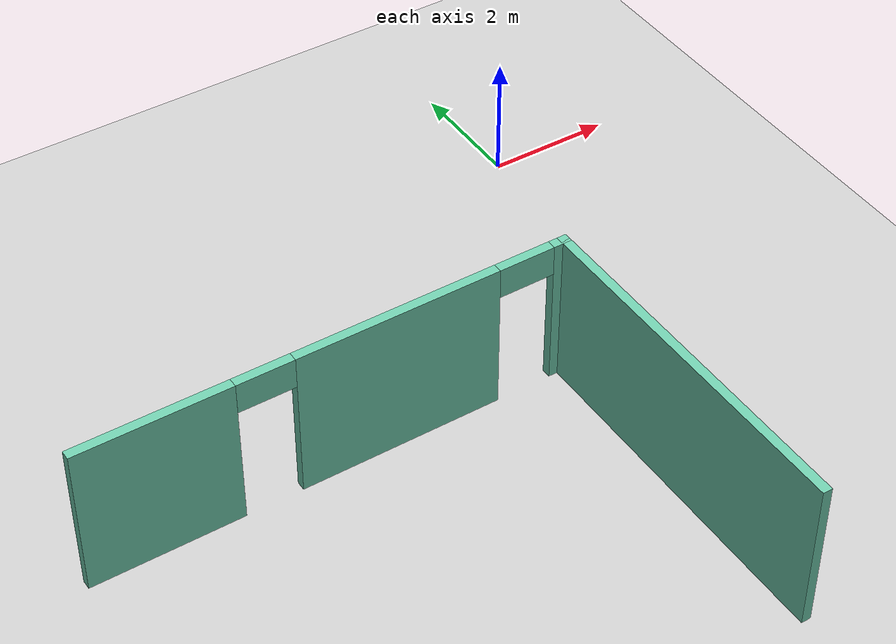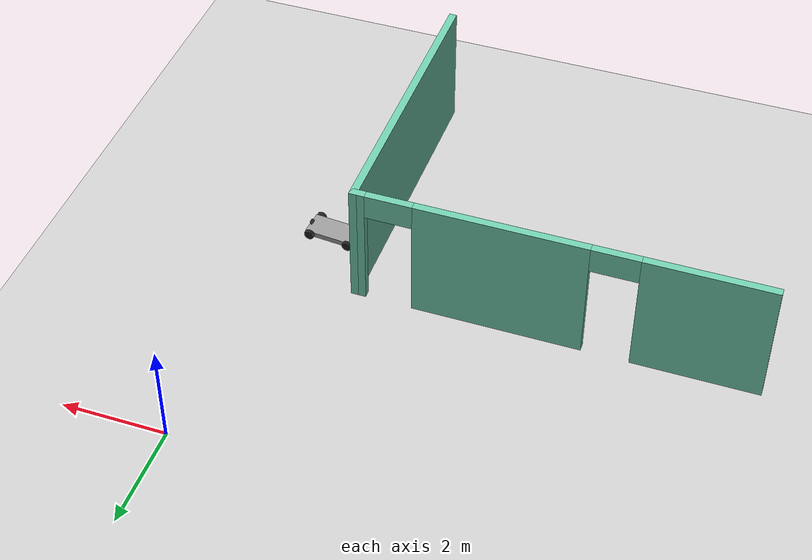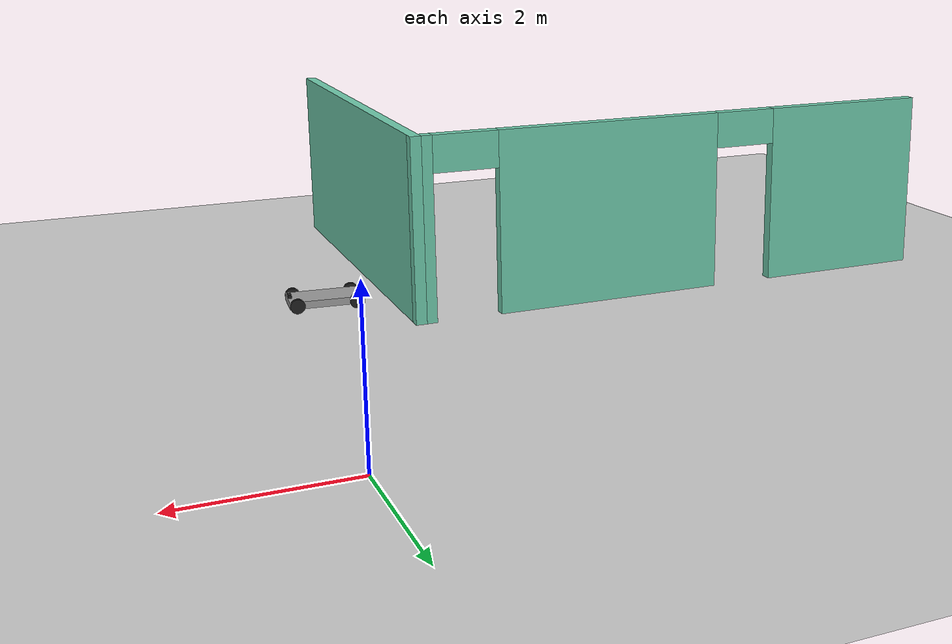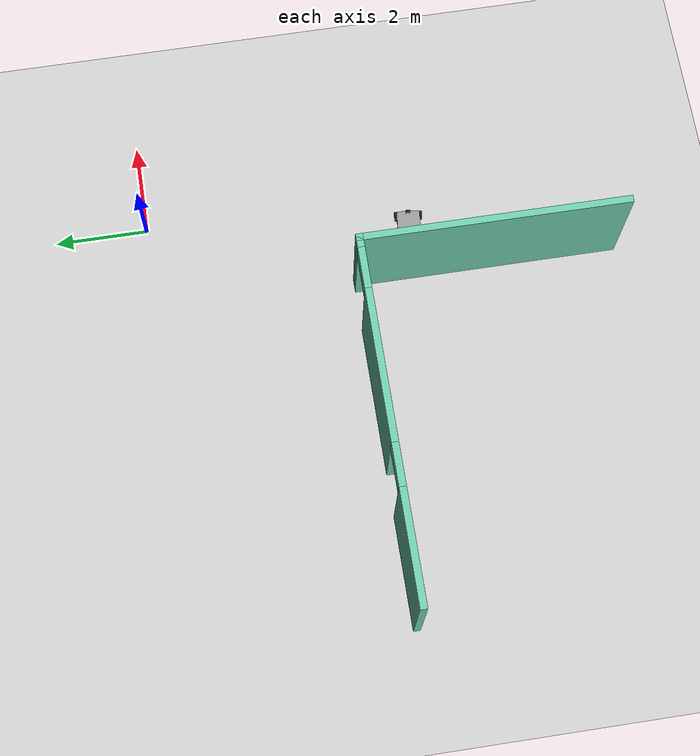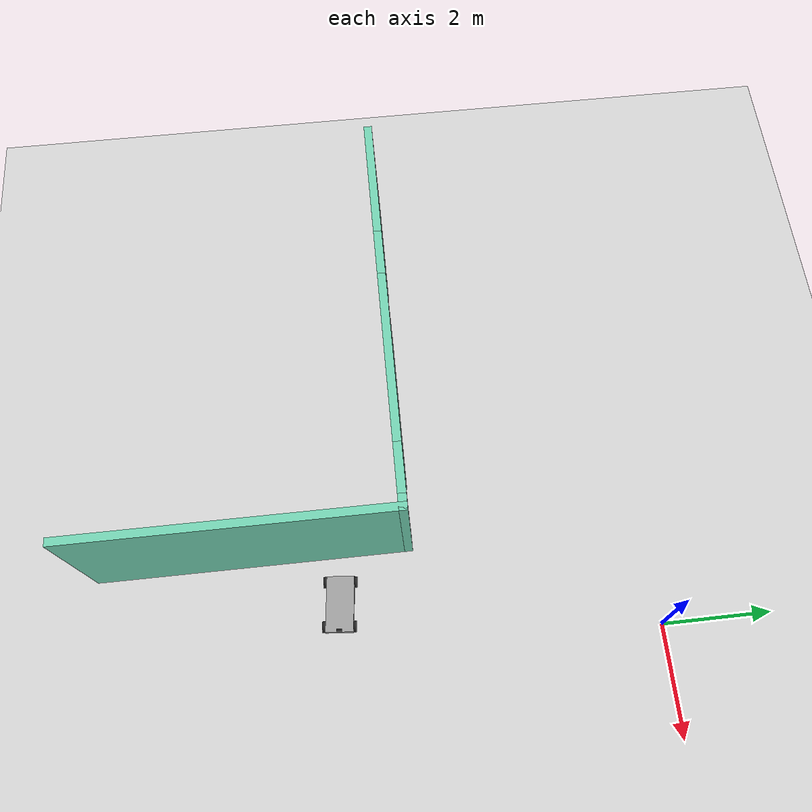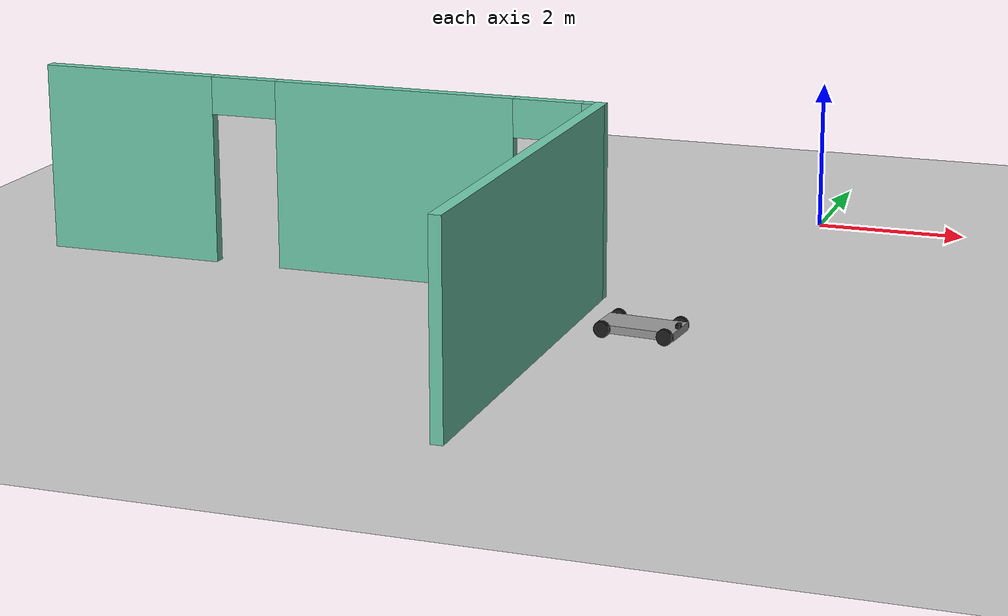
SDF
<sdf version="1.6">
 <world name="default">
  <model name="ground_plane">
   <static>1</static>
   <link name="link">
    <collision name="collision">
     <geometry><plane><normal>0 0 1</normal><size>100 100</size></plane></geometry>
     <surface>
      <contact><collide_bitmask>65535</collide_bitmask></contact>
      <friction><ode><mu>100</mu><mu2>50</mu2></ode></friction>
     </surface>
    </collision>
    <visual name="visual">
     <cast_shadows>0</cast_shadows>
     <geometry><plane><normal>0 0 1</normal><size>100 100</size></plane></geometry>
     <material>
      <script><uri>file://media/materials/scripts/gazebo.material</uri><name>Gazebo/Grey</name></script>
     </material>
    </visual>
   </link>
  </model>
  <model name="Building">
   <link name="Wall_6">
    <pose>-2.68597 -5.85697 0 0 -0 1.5708</pose>
    <visual name="Wall_6_Visual">
     <pose>0 0 1.25 0 -0 0</pose>
     <geometry><box><size>5.75 0.15 2.5</size></box></geometry>
     <material>
      <script><uri>file://media/materials/scripts/gazebo.material</uri><name>Gazebo/Grey</name></script>
      <ambient>0.435294 0.796078 0.67451 1</ambient>
      <shader type="pixel"/>
      <diffuse>0.7 0.7 0.7 1</diffuse>
      <specular>0.01 0.01 0.01 1</specular>
      <emissive>0 0 0 1</emissive>
     </material>
     <meta><layer>0</layer></meta>
    </visual>
    <collision name="Wall_6_Collision">
     <pose>0 0 1.25 0 -0 0</pose>
     <geometry><box><size>5.75 0.15 2.5</size></box></geometry>
     <surface>
      <friction>
       <ode><mu>1</mu><mu2>1</mu2><fdir1>0 0 0</fdir1><slip1>0</slip1><slip2>0</slip2></ode>
       <torsional>
        <coefficient>1</coefficient>
        <patch_radius>0</patch_radius>
        <surface_radius>0</surface_radius>
        <use_patch_radius>1</use_patch_radius>
        <ode><slip>0</slip></ode>
       </torsional>
      </friction>
      <bounce><restitution_coefficient>0</restitution_coefficient><threshold>1e+06</threshold></bounce>
      <contact>
       <collide_without_contact>0</collide_without_contact>
       <collide_without_contact_bitmask>1</collide_without_contact_bitmask>
       <collide_bitmask>1</collide_bitmask>
       <ode>
        <soft_cfm>0</soft_cfm>
        <soft_erp>0.2</soft_erp>
        <kp>1e+13</kp>
        <kd>1</kd>
        <max_vel>0.01</max_vel>
        <min_depth>0</min_depth>
       </ode>
       <bullet>
        <split_impulse>1</split_impulse>
        <split_impulse_penetration_threshold>-0.01</split_impulse_penetration_threshold>
        <soft_cfm>0</soft_cfm>
        <soft_erp>0.2</soft_erp>
        <kp>1e+13</kp>
        <kd>1</kd>
       </bullet>
      </contact>
     </surface>
    </collision>
   </link>
   <link name="Wall_7">
    <pose>-6.48597 -3.05697 0 0 -0 3.14159</pose>
    <visual name="Wall_7_Visual_0">
     <pose>-3.72816 0 1.25 0 -0 0</pose>
     <geometry><box><size>0.293686 0.15 2.5</size></box></geometry>
     <material>
      <script><uri>file://media/materials/scripts/gazebo.material</uri><name>Gazebo/Grey</name></script>
      <ambient>0.435294 0.796078 0.67451 1</ambient>
      <shader type="pixel"/>
      <diffuse>0.7 0.7 0.7 1</diffuse>
      <specular>0.01 0.01 0.01 1</specular>
      <emissive>0 0 0 1</emissive>
     </material>
     <meta><layer>0</layer></meta>
    </visual>
    <visual name="Wall_7_Visual_1">
     <pose>-1.05636 0 1.25 0 -0 0</pose>
     <geometry><box><size>3.2499 0.15 2.5</size></box></geometry>
     <material>
      <script><uri>file://media/materials/scripts/gazebo.material</uri><name>Gazebo/Grey</name></script>
      <ambient>0.435294 0.796078 0.67451 1</ambient>
      <shader type="pixel"/>
      <diffuse>0.7 0.7 0.7 1</diffuse>
      <specular>0.01 0.01 0.01 1</specular>
      <emissive>0 0 0 1</emissive>
     </material>
     <meta><layer>0</layer></meta>
    </visual>
    <visual name="Wall_7_Visual_2">
     <pose>2.67179 0 1.25 0 -0 0</pose>
     <geometry><box><size>2.40641 0.15 2.5</size></box></geometry>
     <material>
      <script><uri>file://media/materials/scripts/gazebo.material</uri><name>Gazebo/Grey</name></script>
      <ambient>0.435294 0.796078 0.67451 1</ambient>
      <shader type="pixel"/>
      <diffuse>0.7 0.7 0.7 1</diffuse>
      <specular>0.01 0.01 0.01 1</specular>
      <emissive>0 0 0 1</emissive>
     </material>
     <meta><layer>0</layer></meta>
    </visual>
    <visual name="Wall_7_Visual_3">
     <pose>-3.13131 0 2.25 0 -0 0</pose>
     <geometry><box><size>0.9 0.15 0.5</size></box></geometry>
     <material>
      <script><uri>file://media/materials/scripts/gazebo.material</uri><name>Gazebo/Grey</name></script>
      <ambient>0.435294 0.796078 0.67451 1</ambient>
      <shader type="pixel"/>
      <diffuse>0.7 0.7 0.7 1</diffuse>
      <specular>0.01 0.01 0.01 1</specular>
      <emissive>0 0 0 1</emissive>
     </material>
     <meta><layer>0</layer></meta>
    </visual>
    <visual name="Wall_7_Visual_4">
     <pose>1.01859 0 2.25 0 -0 0</pose>
     <geometry><box><size>0.9 0.15 0.5</size></box></geometry>
     <material>
      <script><uri>file://media/materials/scripts/gazebo.material</uri><name>Gazebo/Grey</name></script>
      <ambient>0.435294 0.796078 0.67451 1</ambient>
      <shader type="pixel"/>
      <diffuse>0.7 0.7 0.7 1</diffuse>
      <specular>0.01 0.01 0.01 1</specular>
      <emissive>0 0 0 1</emissive>
     </material>
     <meta><layer>0</layer></meta>
    </visual>
    <collision name="Wall_7_Collision_0">
     <pose>-3.72816 0 1.25 0 -0 0</pose>
     <geometry><box><size>0.293686 0.15 2.5</size></box></geometry>
     <surface>
      <friction>
       <ode><mu>1</mu><mu2>1</mu2><fdir1>0 0 0</fdir1><slip1>0</slip1><slip2>0</slip2></ode>
       <torsional>
        <coefficient>1</coefficient>
        <patch_radius>0</patch_radius>
        <surface_radius>0</surface_radius>
        <use_patch_radius>1</use_patch_radius>
        <ode><slip>0</slip></ode>
       </torsional>
      </friction>
      <bounce><restitution_coefficient>0</restitution_coefficient><threshold>1e+06</threshold></bounce>
      <contact>
       <collide_without_contact>0</collide_without_contact>
       <collide_without_contact_bitmask>1</collide_without_contact_bitmask>
       <collide_bitmask>1</collide_bitmask>
       <ode>
        <soft_cfm>0</soft_cfm>
        <soft_erp>0.2</soft_erp>
        <kp>1e+13</kp>
        <kd>1</kd>
        <max_vel>0.01</max_vel>
        <min_depth>0</min_depth>
       </ode>
       <bullet>
        <split_impulse>1</split_impulse>
        <split_impulse_penetration_threshold>-0.01</split_impulse_penetration_threshold>
        <soft_cfm>0</soft_cfm>
        <soft_erp>0.2</soft_erp>
        <kp>1e+13</kp>
        <kd>1</kd>
       </bullet>
      </contact>
     </surface>
    </collision>
    <collision name="Wall_7_Collision_1">
     <pose>-1.05636 0 1.25 0 -0 0</pose>
     <geometry><box><size>3.2499 0.15 2.5</size></box></geometry>
     <surface>
      <friction>
       <ode><mu>1</mu><mu2>1</mu2><fdir1>0 0 0</fdir1><slip1>0</slip1><slip2>0</slip2></ode>
       <torsional>
        <coefficient>1</coefficient>
        <patch_radius>0</patch_radius>
        <surface_radius>0</surface_radius>
        <use_patch_radius>1</use_patch_radius>
        <ode><slip>0</slip></ode>
       </torsional>
      </friction>
      <bounce><restitution_coefficient>0</restitution_coefficient><threshold>1e+06</threshold></bounce>
      <contact>
       <collide_without_contact>0</collide_without_contact>
       <collide_without_contact_bitmask>1</collide_without_contact_bitmask>
       <collide_bitmask>1</collide_bitmask>
       <ode>
        <soft_cfm>0</soft_cfm>
        <soft_erp>0.2</soft_erp>
        <kp>1e+13</kp>
        <kd>1</kd>
        <max_vel>0.01</max_vel>
        <min_depth>0</min_depth>
       </ode>
       <bullet>
        <split_impulse>1</split_impulse>
        <split_impulse_penetration_threshold>-0.01</split_impulse_penetration_threshold>
        <soft_cfm>0</soft_cfm>
        <soft_erp>0.2</soft_erp>
        <kp>1e+13</kp>
        <kd>1</kd>
       </bullet>
      </contact>
     </surface>
    </collision>
    <collision name="Wall_7_Collision_3">
     <pose>-3.13131 0 2.25 0 -0 0</pose>
     <geometry><box><size>0.9 0.15 0.5</size></box></geometry>
     <surface>
      <friction>
       <ode><mu>1</mu><mu2>1</mu2><fdir1>0 0 0</fdir1><slip1>0</slip1><slip2>0</slip2></ode>
       <torsional>
        <coefficient>1</coefficient>
        <patch_radius>0</patch_radius>
        <surface_radius>0</surface_radius>
        <use_patch_radius>1</use_patch_radius>
        <ode><slip>0</slip></ode>
       </torsional>
      </friction>
      <bounce><restitution_coefficient>0</restitution_coefficient><threshold>1e+06</threshold></bounce>
      <contact>
       <collide_without_contact>0</collide_without_contact>
       <collide_without_contact_bitmask>1</collide_without_contact_bitmask>
       <collide_bitmask>1</collide_bitmask>
       <ode>
        <soft_cfm>0</soft_cfm>
        <soft_erp>0.2</soft_erp>
        <kp>1e+13</kp>
        <kd>1</kd>
        <max_vel>0.01</max_vel>
        <min_depth>0</min_depth>
       </ode>
       <bullet>
        <split_impulse>1</split_impulse>
        <split_impulse_penetration_threshold>-0.01</split_impulse_penetration_threshold>
        <soft_cfm>0</soft_cfm>
        <soft_erp>0.2</soft_erp>
        <kp>1e+13</kp>
        <kd>1</kd>
       </bullet>
      </contact>
     </surface>
    </collision>
    <collision name="Wall_7_Collision_2">
     <pose>2.67179 0 1.25 0 -0 0</pose>
     <geometry><box><size>2.40641 0.15 2.5</size></box></geometry>
     <surface>
      <friction>
       <ode><mu>1</mu><mu2>1</mu2><fdir1>0 0 0</fdir1><slip1>0</slip1><slip2>0</slip2></ode>
       <torsional>
        <coefficient>1</coefficient>
        <patch_radius>0</patch_radius>
        <surface_radius>0</surface_radius>
        <use_patch_radius>1</use_patch_radius>
        <ode><slip>0</slip></ode>
       </torsional>
      </friction>
      <bounce><restitution_coefficient>0</restitution_coefficient><threshold>1e+06</threshold></bounce>
      <contact>
       <collide_without_contact>0</collide_without_contact>
       <collide_without_contact_bitmask>1</collide_without_contact_bitmask>
       <collide_bitmask>1</collide_bitmask>
       <ode>
        <soft_cfm>0</soft_cfm>
        <soft_erp>0.2</soft_erp>
        <kp>1e+13</kp>
        <kd>1</kd>
        <max_vel>0.01</max_vel>
        <min_depth>0</min_depth>
       </ode>
       <bullet>
        <split_impulse>1</split_impulse>
        <split_impulse_penetration_threshold>-0.01</split_impulse_penetration_threshold>
        <soft_cfm>0</soft_cfm>
        <soft_erp>0.2</soft_erp>
        <kp>1e+13</kp>
        <kd>1</kd>
       </bullet>
      </contact>
     </surface>
    </collision>
    <collision name="Wall_7_Collision_4">
     <pose>1.01859 0 2.25 0 -0 0</pose>
     <geometry><box><size>0.9 0.15 0.5</size></box></geometry>
     <surface>
      <friction>
       <ode><mu>1</mu><mu2>1</mu2><fdir1>0 0 0</fdir1><slip1>0</slip1><slip2>0</slip2></ode>
       <torsional>
        <coefficient>1</coefficient>
        <patch_radius>0</patch_radius>
        <surface_radius>0</surface_radius>
        <use_patch_radius>1</use_patch_radius>
        <ode><slip>0</slip></ode>
       </torsional>
      </friction>
      <bounce><restitution_coefficient>0</restitution_coefficient><threshold>1e+06</threshold></bounce>
      <contact>
       <collide_without_contact>0</collide_without_contact>
       <collide_without_contact_bitmask>1</collide_without_contact_bitmask>
       <collide_bitmask>1</collide_bitmask>
       <ode>
        <soft_cfm>0</soft_cfm>
        <soft_erp>0.2</soft_erp>
        <kp>1e+13</kp>
        <kd>1</kd>
        <max_vel>0.01</max_vel>
        <min_depth>0</min_depth>
       </ode>
       <bullet>
        <split_impulse>1</split_impulse>
        <split_impulse_penetration_threshold>-0.01</split_impulse_penetration_threshold>
        <soft_cfm>0</soft_cfm>
        <soft_erp>0.2</soft_erp>
        <kp>1e+13</kp>
        <kd>1</kd>
       </bullet>
      </contact>
     </surface>
    </collision>
   </link>
   <static>1</static>
   <pose>0.81107 -1.31925 0 0 -0 0</pose>
  </model>
  <model name="Robot_clone">
   <link name="link_0">
    <pose>-0.395787 -0.010871 -0.185833 0 -0 0</pose>
    <inertial>
     <mass>1</mass>
     <inertia>
      <ixx>0.166667</ixx>
      <ixy>0</ixy>
      <ixz>0</ixz>
      <iyy>0.166667</iyy>
      <iyz>0</iyz>
      <izz>0.166667</izz>
     </inertia>
    </inertial>
    <visual name="visual">
     <geometry><box><size>1 0.5 0.1</size></box></geometry>
     <material>
      <lighting>1</lighting>
      <script><uri>file://media/materials/scripts/gazebo.material</uri><name>Gazebo/Grey</name></script>
      <shader type="pixel"><normal_map>__default__</normal_map></shader>
      <ambient>0.5 0.5 0.5 1</ambient>
      <diffuse>0.5 0.5 0.5 1</diffuse>
      <specular>0.11 0.11 0.11 1</specular>
      <emissive>0 0 0 1</emissive>
     </material>
    </visual>
    <collision name="collision">
     <geometry><box><size>1 0.5 0.1</size></box></geometry>
     <surface>
      <friction>
       <ode><mu>1</mu><mu2>1</mu2><fdir1>0 0 0</fdir1><slip1>0</slip1><slip2>0</slip2></ode>
       <torsional>
        <coefficient>1</coefficient>
        <patch_radius>0</patch_radius>
        <surface_radius>0</surface_radius>
        <use_patch_radius>1</use_patch_radius>
        <ode><slip>0</slip></ode>
       </torsional>
      </friction>
      <bounce><restitution_coefficient>0</restitution_coefficient><threshold>1e+06</threshold></bounce>
      <contact>
       <collide_without_contact>0</collide_without_contact>
       <collide_without_contact_bitmask>1</collide_without_contact_bitmask>
       <collide_bitmask>1</collide_bitmask>
       <ode>
        <soft_cfm>0</soft_cfm>
        <soft_erp>0.2</soft_erp>
        <kp>1e+13</kp>
        <kd>1</kd>
        <max_vel>0.01</max_vel>
        <min_depth>0</min_depth>
       </ode>
       <bullet>
        <split_impulse>1</split_impulse>
        <split_impulse_penetration_threshold>-0.01</split_impulse_penetration_threshold>
        <soft_cfm>0</soft_cfm>
        <soft_erp>0.2</soft_erp>
        <kp>1e+13</kp>
        <kd>1</kd>
       </bullet>
      </contact>
     </surface>
    </collision>
   </link>
   <link name="link_1">
    <pose>-0.795787 -0.285871 -0.185833 1.5708 -0 0</pose>
    <inertial>
     <mass>1</mass>
     <inertia><ixx>0.145833</ixx><ixy>0</ixy><ixz>0</ixz><iyy>0.145833</iyy><iyz>0</iyz><izz>0.125</izz></inertia>
    </inertial>
    <visual name="visual">
     <geometry><cylinder><radius>0.1</radius><length>0.05</length></cylinder></geometry>
     <material>
      <lighting>1</lighting>
      <script><uri>file://media/materials/scripts/gazebo.material</uri><name>Gazebo/Black</name></script>
      <shader type="pixel"><normal_map>__default__</normal_map></shader>
      <ambient>1 0.1 0.1 1</ambient>
      <diffuse>0.5 0.5 0.5 1</diffuse>
      <specular>0.01 0.01 0.01 1</specular>
      <emissive>0 0 0 1</emissive>
     </material>
    </visual>
    <collision name="collision">
     <geometry><cylinder><radius>0.1</radius><length>0.05</length></cylinder></geometry>
     <surface>
      <friction>
       <ode><mu>1</mu><mu2>1</mu2><fdir1>0 0 0</fdir1><slip1>0</slip1><slip2>0</slip2></ode>
       <torsional>
        <coefficient>1</coefficient>
        <patch_radius>0</patch_radius>
        <surface_radius>0</surface_radius>
        <use_patch_radius>1</use_patch_radius>
        <ode><slip>0</slip></ode>
       </torsional>
      </friction>
      <bounce><restitution_coefficient>0</restitution_coefficient><threshold>1e+06</threshold></bounce>
      <contact>
       <collide_without_contact>0</collide_without_contact>
       <collide_without_contact_bitmask>1</collide_without_contact_bitmask>
       <collide_bitmask>1</collide_bitmask>
       <ode>
        <soft_cfm>0</soft_cfm>
        <soft_erp>0.2</soft_erp>
        <kp>1e+13</kp>
        <kd>1</kd>
        <max_vel>0.01</max_vel>
        <min_depth>0</min_depth>
       </ode>
       <bullet>
        <split_impulse>1</split_impulse>
        <split_impulse_penetration_threshold>-0.01</split_impulse_penetration_threshold>
        <soft_cfm>0</soft_cfm>
        <soft_erp>0.2</soft_erp>
        <kp>1e+13</kp>
        <kd>1</kd>
       </bullet>
      </contact>
     </surface>
    </collision>
   </link>
   <link name="link_1_clone">
    <pose>0.004213 0.264129 -0.185833 1.5708 -0 0</pose>
    <inertial>
     <mass>1</mass>
     <inertia><ixx>0.145833</ixx><ixy>0</ixy><ixz>0</ixz><iyy>0.145833</iyy><iyz>0</iyz><izz>0.125</izz></inertia>
    </inertial>
    <visual name="visual">
     <geometry><cylinder><radius>0.1</radius><length>0.05</length></cylinder></geometry>
     <material>
      <lighting>1</lighting>
      <script><uri>file://media/materials/scripts/gazebo.material</uri><name>Gazebo/Black</name></script>
      <shader type="pixel"><normal_map>__default__</normal_map></shader>
      <ambient>1 0.1 0.1 1</ambient>
      <diffuse>0.5 0.5 0.5 1</diffuse>
      <specular>0.01 0.01 0.01 1</specular>
      <emissive>0 0 0 1</emissive>
     </material>
    </visual>
    <collision name="collision">
     <geometry><cylinder><radius>0.1</radius><length>0.05</length></cylinder></geometry>
     <surface>
      <friction>
       <ode><mu>1</mu><mu2>1</mu2><fdir1>0 0 0</fdir1><slip1>0</slip1><slip2>0</slip2></ode>
       <torsional>
        <coefficient>1</coefficient>
        <patch_radius>0</patch_radius>
        <surface_radius>0</surface_radius>
        <use_patch_radius>1</use_patch_radius>
        <ode><slip>0</slip></ode>
       </torsional>
      </friction>
      <bounce><restitution_coefficient>0</restitution_coefficient><threshold>1e+06</threshold></bounce>
      <contact>
       <collide_without_contact>0</collide_without_contact>
       <collide_without_contact_bitmask>1</collide_without_contact_bitmask>
       <collide_bitmask>1</collide_bitmask>
       <ode>
        <soft_cfm>0</soft_cfm>
        <soft_erp>0.2</soft_erp>
        <kp>1e+13</kp>
        <kd>1</kd>
        <max_vel>0.01</max_vel>
        <min_depth>0</min_depth>
       </ode>
       <bullet>
        <split_impulse>1</split_impulse>
        <split_impulse_penetration_threshold>-0.01</split_impulse_penetration_threshold>
        <soft_cfm>0</soft_cfm>
        <soft_erp>0.2</soft_erp>
        <kp>1e+13</kp>
        <kd>1</kd>
       </bullet>
      </contact>
     </surface>
    </collision>
   </link>
   <link name="link_1_clone_0">
    <pose>0.004213 -0.285871 -0.185833 1.5708 -0 0</pose>
    <inertial>
     <mass>1</mass>
     <inertia><ixx>0.145833</ixx><ixy>0</ixy><ixz>0</ixz><iyy>0.145833</iyy><iyz>0</iyz><izz>0.125</izz></inertia>
    </inertial>
    <visual name="visual">
     <geometry><cylinder><radius>0.1</radius><length>0.05</length></cylinder></geometry>
     <material>
      <lighting>1</lighting>
      <script><uri>file://media/materials/scripts/gazebo.material</uri><name>Gazebo/Black</name></script>
      <shader type="pixel"><normal_map>__default__</normal_map></shader>
      <ambient>1 0.1 0.1 1</ambient>
      <diffuse>0.5 0.5 0.5 1</diffuse>
      <specular>0.01 0.01 0.01 1</specular>
      <emissive>0 0 0 1</emissive>
     </material>
    </visual>
    <collision name="collision">
     <geometry><cylinder><radius>0.1</radius><length>0.05</length></cylinder></geometry>
     <surface>
      <friction>
       <ode><mu>1</mu><mu2>1</mu2><fdir1>0 0 0</fdir1><slip1>0</slip1><slip2>0</slip2></ode>
       <torsional>
        <coefficient>1</coefficient>
        <patch_radius>0</patch_radius>
        <surface_radius>0</surface_radius>
        <use_patch_radius>1</use_patch_radius>
        <ode><slip>0</slip></ode>
       </torsional>
      </friction>
      <bounce><restitution_coefficient>0</restitution_coefficient><threshold>1e+06</threshold></bounce>
      <contact>
       <collide_without_contact>0</collide_without_contact>
       <collide_without_contact_bitmask>1</collide_without_contact_bitmask>
       <collide_bitmask>1</collide_bitmask>
       <ode>
        <soft_cfm>0</soft_cfm>
        <soft_erp>0.2</soft_erp>
        <kp>1e+13</kp>
        <kd>1</kd>
        <max_vel>0.01</max_vel>
        <min_depth>0</min_depth>
       </ode>
       <bullet>
        <split_impulse>1</split_impulse>
        <split_impulse_penetration_threshold>-0.01</split_impulse_penetration_threshold>
        <soft_cfm>0</soft_cfm>
        <soft_erp>0.2</soft_erp>
        <kp>1e+13</kp>
        <kd>1</kd>
       </bullet>
      </contact>
     </surface>
    </collision>
   </link>
   <link name="link_1_clone_1">
    <pose>-0.795787 0.264129 -0.185833 1.5708 -0 0</pose>
    <inertial>
     <mass>1</mass>
     <inertia><ixx>0.145833</ixx><ixy>0</ixy><ixz>0</ixz><iyy>0.145833</iyy><iyz>0</iyz><izz>0.125</izz></inertia>
    </inertial>
    <visual name="visual">
     <geometry><cylinder><radius>0.1</radius><length>0.05</length></cylinder></geometry>
     <material>
      <lighting>1</lighting>
      <script><uri>file://media/materials/scripts/gazebo.material</uri><name>Gazebo/Black</name></script>
      <shader type="pixel"><normal_map>__default__</normal_map></shader>
      <ambient>1 0.1 0.1 1</ambient>
      <diffuse>0.5 0.5 0.5 1</diffuse>
      <specular>0.01 0.01 0.01 1</specular>
      <emissive>0 0 0 1</emissive>
     </material>
    </visual>
    <collision name="collision">
     <geometry><cylinder><radius>0.1</radius><length>0.05</length></cylinder></geometry>
     <surface>
      <friction>
       <ode><mu>1</mu><mu2>1</mu2><fdir1>0 0 0</fdir1><slip1>0</slip1><slip2>0</slip2></ode>
       <torsional>
        <coefficient>1</coefficient>
        <patch_radius>0</patch_radius>
        <surface_radius>0</surface_radius>
        <use_patch_radius>1</use_patch_radius>
        <ode><slip>0</slip></ode>
       </torsional>
      </friction>
      <bounce><restitution_coefficient>0</restitution_coefficient><threshold>1e+06</threshold></bounce>
      <contact>
       <collide_without_contact>0</collide_without_contact>
       <collide_without_contact_bitmask>1</collide_without_contact_bitmask>
       <collide_bitmask>1</collide_bitmask>
       <ode>
        <soft_cfm>0</soft_cfm>
        <soft_erp>0.2</soft_erp>
        <kp>1e+13</kp>
        <kd>1</kd>
        <max_vel>0.01</max_vel>
        <min_depth>0</min_depth>
       </ode>
       <bullet>
        <split_impulse>1</split_impulse>
        <split_impulse_penetration_threshold>-0.01</split_impulse_penetration_threshold>
        <soft_cfm>0</soft_cfm>
        <soft_erp>0.2</soft_erp>
        <kp>1e+13</kp>
        <kd>1</kd>
       </bullet>
      </contact>
     </surface>
    </collision>
   </link>
   <link name="link_2">
    <pose>0.079213 -0.010871 -0.110833 0 -0 0</pose>
    <inertial>
     <mass>1</mass>
     <inertia>
      <ixx>0.166667</ixx>
      <ixy>0</ixy>
      <ixz>0</ixz>
      <iyy>0.166667</iyy>
      <iyz>0</iyz>
      <izz>0.166667</izz>
     </inertia>
    </inertial>
    <visual name="visual">
     <geometry><box><size>0.05 0.1 0.05</size></box></geometry>
     <material>
      <lighting>1</lighting>
      <script><uri>file://media/materials/scripts/gazebo.material</uri><name>Gazebo/Black</name></script>
      <shader type="pixel"><normal_map>__default__</normal_map></shader>
      <ambient>0 1 1 1</ambient>
      <diffuse>0 0 0 1</diffuse>
      <specular>0 0 0 1</specular>
      <emissive>0 0 0 1</emissive>
     </material>
    </visual>
    <collision name="collision">
     <geometry><box><size>0.05 0.1 0.05</size></box></geometry>
     <surface>
      <friction>
       <ode><mu>1</mu><mu2>1</mu2><fdir1>0 0 0</fdir1><slip1>0</slip1><slip2>0</slip2></ode>
       <torsional>
        <coefficient>1</coefficient>
        <patch_radius>0</patch_radius>
        <surface_radius>0</surface_radius>
        <use_patch_radius>1</use_patch_radius>
        <ode><slip>0</slip></ode>
       </torsional>
      </friction>
      <bounce><restitution_coefficient>0</restitution_coefficient><threshold>1e+06</threshold></bounce>
      <contact>
       <collide_without_contact>0</collide_without_contact>
       <collide_without_contact_bitmask>1</collide_without_contact_bitmask>
       <collide_bitmask>1</collide_bitmask>
       <ode>
        <soft_cfm>0</soft_cfm>
        <soft_erp>0.2</soft_erp>
        <kp>1e+13</kp>
        <kd>1</kd>
        <max_vel>0.01</max_vel>
        <min_depth>0</min_depth>
       </ode>
       <bullet>
        <split_impulse>1</split_impulse>
        <split_impulse_penetration_threshold>-0.01</split_impulse_penetration_threshold>
        <soft_cfm>0</soft_cfm>
        <soft_erp>0.2</soft_erp>
        <kp>1e+13</kp>
        <kd>1</kd>
       </bullet>
      </contact>
     </surface>
    </collision>
   </link>
   <joint name="link_0_JOINT_2" type="revolute">
    <parent>link_0</parent>
    <child>link_1</child>
    <axis>
     <xyz>0 0 1</xyz>
     <use_parent_model_frame>0</use_parent_model_frame>
     <limit>
      <lower>-1.79769e+308</lower>
      <upper>1.79769e+308</upper>
      <effort>-1</effort>
      <velocity>-1</velocity>
     </limit>
     <dynamics>
      <spring_reference>0</spring_reference>
      <spring_stiffness>0</spring_stiffness>
      <damping>0</damping>
      <friction>0</friction>
     </dynamics>
    </axis>
    <physics>
     <ode><limit><cfm>0</cfm><erp>0.2</erp></limit><suspension><cfm>0</cfm><erp>0.2</erp></suspension></ode>
    </physics>
   </joint>
   <joint name="link_0_JOINT_3" type="revolute">
    <parent>link_0</parent>
    <child>link_1_clone_1</child>
    <axis>
     <xyz>1 0 0</xyz>
     <use_parent_model_frame>0</use_parent_model_frame>
     <limit>
      <lower>-1.79769e+308</lower>
      <upper>1.79769e+308</upper>
      <effort>-1</effort>
      <velocity>-1</velocity>
     </limit>
     <dynamics>
      <spring_reference>0</spring_reference>
      <spring_stiffness>0</spring_stiffness>
      <damping>0</damping>
      <friction>0</friction>
     </dynamics>
    </axis>
    <physics>
     <ode><limit><cfm>0</cfm><erp>0.2</erp></limit><suspension><cfm>0</cfm><erp>0.2</erp></suspension></ode>
    </physics>
   </joint>
   <joint name="link_0_JOINT_4" type="revolute2">
    <parent>link_0</parent>
    <child>link_1_clone_0</child>
    <axis>
     <xyz>0 0 1</xyz>
     <use_parent_model_frame>0</use_parent_model_frame>
     <limit>
      <lower>-1.79769e+308</lower>
      <upper>1.79769e+308</upper>
      <effort>-1</effort>
      <velocity>-1</velocity>
     </limit>
     <dynamics>
      <spring_reference>0</spring_reference>
      <spring_stiffness>0</spring_stiffness>
      <damping>0</damping>
      <friction>0</friction>
     </dynamics>
    </axis>
    <axis2>
     <xyz>0 1 0</xyz>
     <use_parent_model_frame>0</use_parent_model_frame>
     <dynamics>
      <spring_reference>0</spring_reference>
      <spring_stiffness>0</spring_stiffness>
      <damping>0</damping>
      <friction>0</friction>
     </dynamics>
     <limit>
      <lower>-1.79769e+308</lower>
      <upper>1.79769e+308</upper>
      <effort>-1</effort>
      <velocity>-1</velocity>
     </limit>
    </axis2>
    <physics>
     <ode><limit><cfm>0</cfm><erp>0.2</erp></limit><suspension><cfm>0</cfm><erp>0.2</erp></suspension></ode>
    </physics>
   </joint>
   <joint name="link_0_JOINT_5" type="revolute2">
    <parent>link_0</parent>
    <child>link_1_clone</child>
    <axis>
     <xyz>0 0 1</xyz>
     <use_parent_model_frame>0</use_parent_model_frame>
     <limit>
      <lower>-1.79769e+308</lower>
      <upper>1.79769e+308</upper>
      <effort>-1</effort>
      <velocity>-1</velocity>
     </limit>
     <dynamics>
      <spring_reference>0</spring_reference>
      <spring_stiffness>0</spring_stiffness>
      <damping>0</damping>
      <friction>0</friction>
     </dynamics>
    </axis>
    <axis2>
     <xyz>0 1 0</xyz>
     <use_parent_model_frame>0</use_parent_model_frame>
     <dynamics>
      <spring_reference>0</spring_reference>
      <spring_stiffness>0</spring_stiffness>
      <damping>0</damping>
      <friction>0</friction>
     </dynamics>
     <limit>
      <lower>-1.79769e+308</lower>
      <upper>1.79769e+308</upper>
      <effort>-1</effort>
      <velocity>-1</velocity>
     </limit>
    </axis2>
    <physics>
     <ode><limit><cfm>0</cfm><erp>0.2</erp></limit><suspension><cfm>0</cfm><erp>0.2</erp></suspension></ode>
    </physics>
   </joint>
   <joint name="link_0_JOINT_6" type="fixed">
    <parent>link_0</parent>
    <child>link_2</child>
    <physics>
     <ode><limit><cfm>0</cfm><erp>0.2</erp></limit><suspension><cfm>0</cfm><erp>0.2</erp></suspension></ode>
    </physics>
   </joint>
   <static>0</static>
   <pose>-0.533554 -5.71058 0.285833 2e-06 1e-06 -0.084855</pose>
  </model>
 </world>
</sdf>
